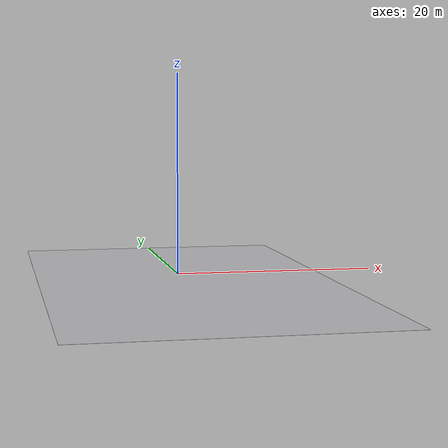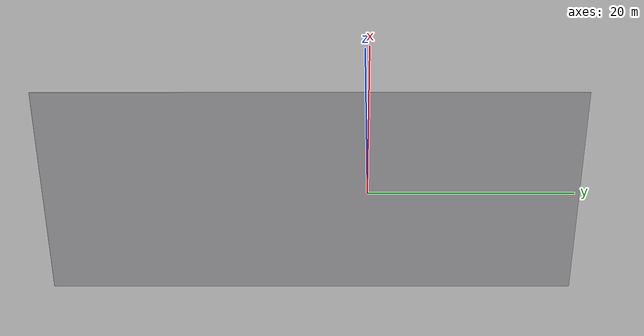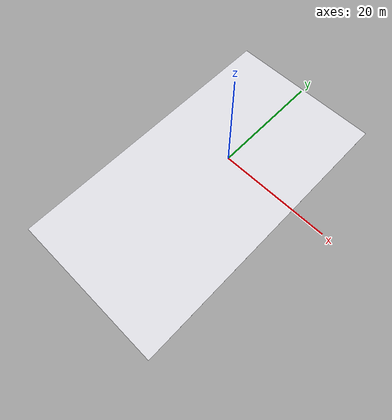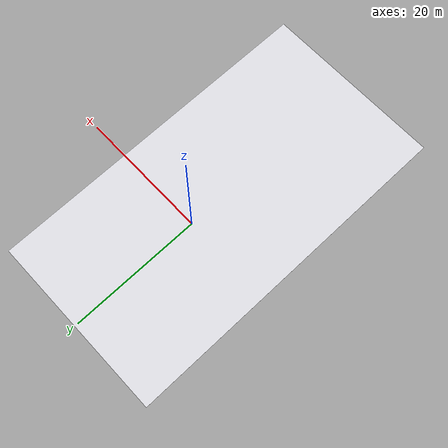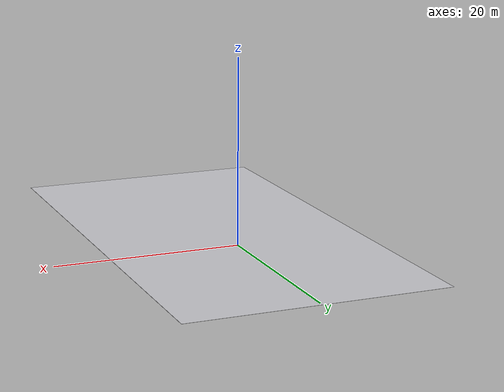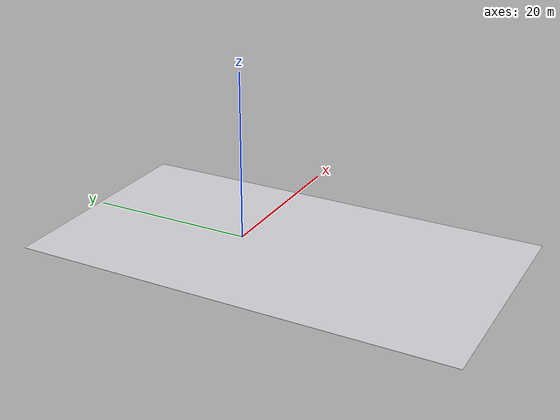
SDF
<?xml version="1.0"?>
<sdf version="1.6">
  <model name="clinic_floor_base">
    <static>true</static>
    <link name="link">
      <pose>0 -5.5 0.01 0 0 0</pose>
      <collision name="col">
        <geometry><box><size>28.0 52.0 0.02</size></box></geometry>
      </collision>
      <visual name="vis">
        <geometry><box><size>28.0 52.0 0.02</size></box></geometry>
        <material>
          <ambient>0.88 0.88 0.9 1</ambient>
          <diffuse>0.88 0.88 0.9 1</diffuse>
        </material>
      </visual>
    </link>
  </model>
</sdf>
